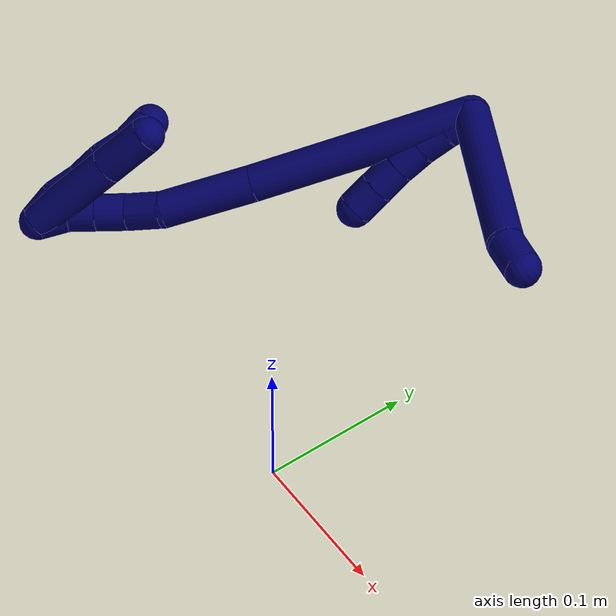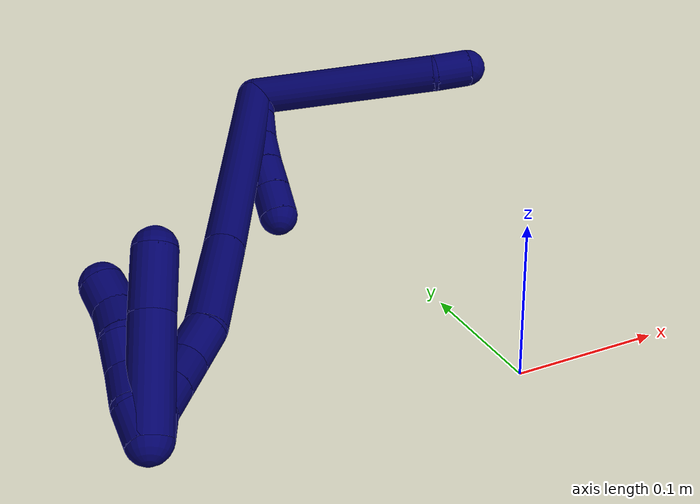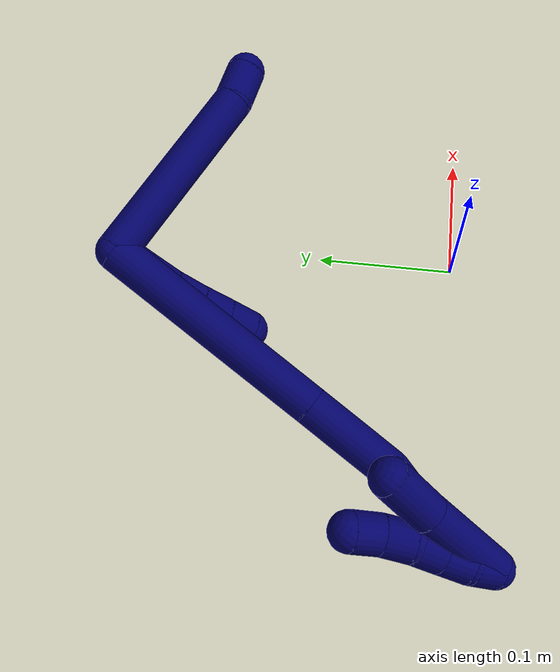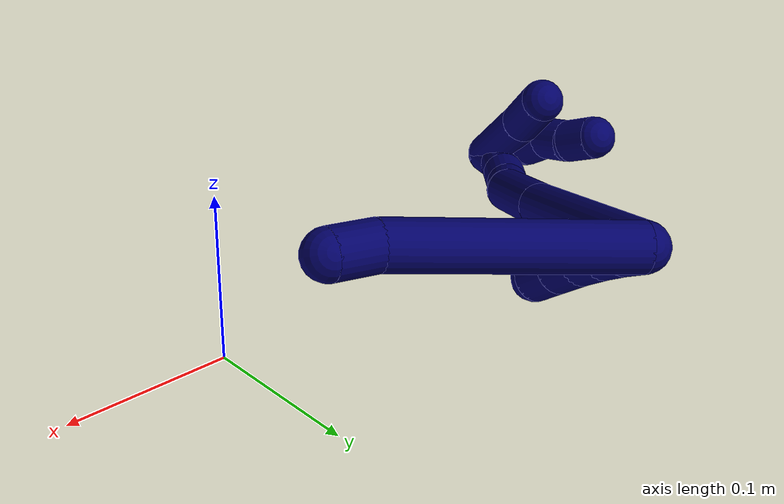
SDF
<sdf version="1.7">
 <world name="default">
  <model name="7">
   <static>0</static>
   <link name="7">
    <collision name="collision-cylinder-e_1_2_8">
     <pose>0.061822 0.010924 -0.002964 -1.83573 1.38971 -1.6567</pose>
     <geometry><cylinder><radius>0.0125</radius><length>0.125699</length></cylinder></geometry>
     <surface>
      <friction><ode><mu>1.16</mu><mu2>1.16</mu2><slip1>0</slip1><slip2>0</slip2></ode></friction>
      <contact><ode><kp>1e+06</kp><kd>1</kd><max_vel>0</max_vel><min_depth>0.001</min_depth></ode></contact>
     </surface>
    </collision>
    <visual name="visual-cylinder-e_1_2_8">
     <pose>0.061822 0.010924 -0.002964 -1.83573 1.38971 -1.6567</pose>
     <geometry><cylinder><radius>0.0125</radius><length>0.125699</length></cylinder></geometry>
     <material><ambient>0.003922 0 0.403922 1</ambient></material>
    </visual>
    <collision name="collision-cylinder-e_2_8_6">
     <pose>0.134862 0.026102 -0.00401 -1.14716 1.17662 -0.813837</pose>
     <geometry><cylinder><radius>0.0125</radius><length>0.024301</length></cylinder></geometry>
     <surface>
      <friction><ode><mu>1.16</mu><mu2>1.16</mu2><slip1>0</slip1><slip2>0</slip2></ode></friction>
      <contact><ode><kp>1e+06</kp><kd>1</kd><max_vel>0</max_vel><min_depth>0.001</min_depth></ode></contact>
     </surface>
    </collision>
    <visual name="visual-cylinder-e_2_8_6">
     <pose>0.134862 0.026102 -0.00401 -1.14716 1.17662 -0.813837</pose>
     <geometry><cylinder><radius>0.0125</radius><length>0.024301</length></cylinder></geometry>
     <material><ambient>0.003922 0 0.403922 1</ambient></material>
    </visual>
    <collision name="collision-cylinder-e_1_2_9">
     <pose>3e-05 3.8e-05 -0.01 -3.13782 0.002966 -1.33151</pose>
     <geometry><cylinder><radius>0.0125</radius><length>0.02</length></cylinder></geometry>
     <surface>
      <friction><ode><mu>1.16</mu><mu2>1.16</mu2><slip1>0</slip1><slip2>0</slip2></ode></friction>
      <contact><ode><kp>1e+06</kp><kd>1</kd><max_vel>0</max_vel><min_depth>0.001</min_depth></ode></contact>
     </surface>
    </collision>
    <visual name="visual-cylinder-e_1_2_9">
     <pose>3e-05 3.8e-05 -0.01 -3.13782 0.002966 -1.33151</pose>
     <geometry><cylinder><radius>0.0125</radius><length>0.02</length></cylinder></geometry>
     <material><ambient>0.003922 0 0.403922 1</ambient></material>
    </visual>
    <collision name="collision-cylinder-e_2_9_10">
     <pose>0.000271 0.000533 -0.029987 -3.09583 0.021176 -0.866639</pose>
     <geometry><cylinder><radius>0.0125</radius><length>0.02</length></cylinder></geometry>
     <surface>
      <friction><ode><mu>1.16</mu><mu2>1.16</mu2><slip1>0</slip1><slip2>0</slip2></ode></friction>
      <contact><ode><kp>1e+06</kp><kd>1</kd><max_vel>0</max_vel><min_depth>0.001</min_depth></ode></contact>
     </surface>
    </collision>
    <visual name="visual-cylinder-e_2_9_10">
     <pose>0.000271 0.000533 -0.029987 -3.09583 0.021176 -0.866639</pose>
     <geometry><cylinder><radius>0.0125</radius><length>0.02</length></cylinder></geometry>
     <material><ambient>0.003922 0 0.403922 1</ambient></material>
    </visual>
    <collision name="collision-cylinder-e_3_10_11">
     <pose>0.001538 0.002104 -0.049856 -3.0294 0.105699 -1.51111</pose>
     <geometry><cylinder><radius>0.0125</radius><length>0.02</length></cylinder></geometry>
     <surface>
      <friction><ode><mu>1.16</mu><mu2>1.16</mu2><slip1>0</slip1><slip2>0</slip2></ode></friction>
      <contact><ode><kp>1e+06</kp><kd>1</kd><max_vel>0</max_vel><min_depth>0.001</min_depth></ode></contact>
     </surface>
    </collision>
    <visual name="visual-cylinder-e_3_10_11">
     <pose>0.001538 0.002104 -0.049856 -3.0294 0.105699 -1.51111</pose>
     <geometry><cylinder><radius>0.0125</radius><length>0.02</length></cylinder></geometry>
     <material><ambient>0.003922 0 0.403922 1</ambient></material>
    </visual>
    <collision name="collision-cylinder-e_4_11_12">
     <pose>0.004073 0.005049 -0.069456 -2.95531 0.148585 -1.34556</pose>
     <geometry><cylinder><radius>0.0125</radius><length>0.02</length></cylinder></geometry>
     <surface>
      <friction><ode><mu>1.16</mu><mu2>1.16</mu2><slip1>0</slip1><slip2>0</slip2></ode></friction>
      <contact><ode><kp>1e+06</kp><kd>1</kd><max_vel>0</max_vel><min_depth>0.001</min_depth></ode></contact>
     </surface>
    </collision>
    <visual name="visual-cylinder-e_4_11_12">
     <pose>0.004073 0.005049 -0.069456 -2.95531 0.148585 -1.34556</pose>
     <geometry><cylinder><radius>0.0125</radius><length>0.02</length></cylinder></geometry>
     <material><ambient>0.003922 0 0.403922 1</ambient></material>
    </visual>
    <collision name="collision-cylinder-e_5_12_5">
     <pose>0.006913 0.008707 -0.088913 -2.95616 0.136312 -1.26653</pose>
     <geometry><cylinder><radius>0.0125</radius><length>0.02</length></cylinder></geometry>
     <surface>
      <friction><ode><mu>1.16</mu><mu2>1.16</mu2><slip1>0</slip1><slip2>0</slip2></ode></friction>
      <contact><ode><kp>1e+06</kp><kd>1</kd><max_vel>0</max_vel><min_depth>0.001</min_depth></ode></contact>
     </surface>
    </collision>
    <visual name="visual-cylinder-e_5_12_5">
     <pose>0.006913 0.008707 -0.088913 -2.95616 0.136312 -1.26653</pose>
     <geometry><cylinder><radius>0.0125</radius><length>0.02</length></cylinder></geometry>
     <material><ambient>0.003922 0 0.403922 1</ambient></material>
    </visual>
    <collision name="collision-cylinder-e_1_2_13">
     <pose>-0.004886 -0.017905 -0.073311 2.90205 -0.064659 -0.525065</pose>
     <geometry><cylinder><radius>0.0125</radius><length>0.151248</length></cylinder></geometry>
     <surface>
      <friction><ode><mu>1.16</mu><mu2>1.16</mu2><slip1>0</slip1><slip2>0</slip2></ode></friction>
      <contact><ode><kp>1e+06</kp><kd>1</kd><max_vel>0</max_vel><min_depth>0.001</min_depth></ode></contact>
     </surface>
    </collision>
    <visual name="visual-cylinder-e_1_2_13">
     <pose>-0.004886 -0.017905 -0.073311 2.90205 -0.064659 -0.525065</pose>
     <geometry><cylinder><radius>0.0125</radius><length>0.151248</length></cylinder></geometry>
     <material><ambient>0.003922 0 0.403922 1</ambient></material>
    </visual>
    <collision name="collision-cylinder-e_2_13_14">
     <pose>-0.011977 -0.043979 -0.177117 2.87981 -0.069713 -0.517887</pose>
     <geometry><cylinder><radius>0.0125</radius><length>0.063292</length></cylinder></geometry>
     <surface>
      <friction><ode><mu>1.16</mu><mu2>1.16</mu2><slip1>0</slip1><slip2>0</slip2></ode></friction>
      <contact><ode><kp>1e+06</kp><kd>1</kd><max_vel>0</max_vel><min_depth>0.001</min_depth></ode></contact>
     </surface>
    </collision>
    <visual name="visual-cylinder-e_2_13_14">
     <pose>-0.011977 -0.043979 -0.177117 2.87981 -0.069713 -0.517887</pose>
     <geometry><cylinder><radius>0.0125</radius><length>0.063292</length></cylinder></geometry>
     <material><ambient>0.003922 0 0.403922 1</ambient></material>
    </visual>
    <collision name="collision-cylinder-e_3_14_15">
     <pose>-0.01815 -0.056082 -0.218443 2.79334 -0.331662 -1.52106</pose>
     <geometry><cylinder><radius>0.0125</radius><length>0.024376</length></cylinder></geometry>
     <surface>
      <friction><ode><mu>1.16</mu><mu2>1.16</mu2><slip1>0</slip1><slip2>0</slip2></ode></friction>
      <contact><ode><kp>1e+06</kp><kd>1</kd><max_vel>0</max_vel><min_depth>0.001</min_depth></ode></contact>
     </surface>
    </collision>
    <visual name="visual-cylinder-e_3_14_15">
     <pose>-0.01815 -0.056082 -0.218443 2.79334 -0.331662 -1.52106</pose>
     <geometry><cylinder><radius>0.0125</radius><length>0.024376</length></cylinder></geometry>
     <material><ambient>0.003922 0 0.403922 1</ambient></material>
    </visual>
    <collision name="collision-cylinder-e_4_15_16">
     <pose>-0.024024 -0.06499 -0.238347 2.64002 -0.182091 -0.684701</pose>
     <geometry><cylinder><radius>0.0125</radius><length>0.021042</length></cylinder></geometry>
     <surface>
      <friction><ode><mu>1.16</mu><mu2>1.16</mu2><slip1>0</slip1><slip2>0</slip2></ode></friction>
      <contact><ode><kp>1e+06</kp><kd>1</kd><max_vel>0</max_vel><min_depth>0.001</min_depth></ode></contact>
     </surface>
    </collision>
    <visual name="visual-cylinder-e_4_15_16">
     <pose>-0.024024 -0.06499 -0.238347 2.64002 -0.182091 -0.684701</pose>
     <geometry><cylinder><radius>0.0125</radius><length>0.021042</length></cylinder></geometry>
     <material><ambient>0.003922 0 0.403922 1</ambient></material>
    </visual>
    <collision name="collision-cylinder-e_5_16_17">
     <pose>-0.027742 -0.074682 -0.25605 2.64137 -0.182273 -0.687114</pose>
     <geometry><cylinder><radius>0.0125</radius><length>0.020002</length></cylinder></geometry>
     <surface>
      <friction><ode><mu>1.16</mu><mu2>1.16</mu2><slip1>0</slip1><slip2>0</slip2></ode></friction>
      <contact><ode><kp>1e+06</kp><kd>1</kd><max_vel>0</max_vel><min_depth>0.001</min_depth></ode></contact>
     </surface>
    </collision>
    <visual name="visual-cylinder-e_5_16_17">
     <pose>-0.027742 -0.074682 -0.25605 2.64137 -0.182273 -0.687114</pose>
     <geometry><cylinder><radius>0.0125</radius><length>0.020002</length></cylinder></geometry>
     <material><ambient>0.003922 0 0.403922 1</ambient></material>
    </visual>
    <collision name="collision-cylinder-e_6_17_1">
     <pose>-0.028399 -0.083267 -0.273851 2.74247 0.115645 0.557512</pose>
     <geometry><cylinder><radius>0.0125</radius><length>0.020039</length></cylinder></geometry>
     <surface>
      <friction><ode><mu>1.16</mu><mu2>1.16</mu2><slip1>0</slip1><slip2>0</slip2></ode></friction>
      <contact><ode><kp>1e+06</kp><kd>1</kd><max_vel>0</max_vel><min_depth>0.001</min_depth></ode></contact>
     </surface>
    </collision>
    <visual name="visual-cylinder-e_6_17_1">
     <pose>-0.028399 -0.083267 -0.273851 2.74247 0.115645 0.557512</pose>
     <geometry><cylinder><radius>0.0125</radius><length>0.020039</length></cylinder></geometry>
     <material><ambient>0.003922 0 0.403922 1</ambient></material>
    </visual>
    <collision name="collision-cylinder-e_1_1_18">
     <pose>-0.02474 -0.092178 -0.251682 0.15958 0.078689 0.006295</pose>
     <geometry><cylinder><radius>0.0125</radius><length>0.063682</length></cylinder></geometry>
     <surface>
      <friction><ode><mu>1.16</mu><mu2>1.16</mu2><slip1>0</slip1><slip2>0</slip2></ode></friction>
      <contact><ode><kp>1e+06</kp><kd>1</kd><max_vel>0</max_vel><min_depth>0.001</min_depth></ode></contact>
     </surface>
    </collision>
    <visual name="visual-cylinder-e_1_1_18">
     <pose>-0.02474 -0.092178 -0.251682 0.15958 0.078689 0.006295</pose>
     <geometry><cylinder><radius>0.0125</radius><length>0.063682</length></cylinder></geometry>
     <material><ambient>0.003922 0 0.403922 1</ambient></material>
    </visual>
    <collision name="collision-cylinder-e_2_18_4">
     <pose>-0.020196 -0.100392 -0.202579 0.176554 0.112643 0.00998</pose>
     <geometry><cylinder><radius>0.0125</radius><length>0.036318</length></cylinder></geometry>
     <surface>
      <friction><ode><mu>1.16</mu><mu2>1.16</mu2><slip1>0</slip1><slip2>0</slip2></ode></friction>
      <contact><ode><kp>1e+06</kp><kd>1</kd><max_vel>0</max_vel><min_depth>0.001</min_depth></ode></contact>
     </surface>
    </collision>
    <visual name="visual-cylinder-e_2_18_4">
     <pose>-0.020196 -0.100392 -0.202579 0.176554 0.112643 0.00998</pose>
     <geometry><cylinder><radius>0.0125</radius><length>0.036318</length></cylinder></geometry>
     <material><ambient>0.003922 0 0.403922 1</ambient></material>
    </visual>
    <collision name="collision-cylinder-e_1_1_19">
     <pose>-0.030261 -0.08902 -0.273676 0.199093 -0.306635 -0.030865</pose>
     <geometry><cylinder><radius>0.0125</radius><length>0.02</length></cylinder></geometry>
     <surface>
      <friction><ode><mu>1.16</mu><mu2>1.16</mu2><slip1>0</slip1><slip2>0</slip2></ode></friction>
      <contact><ode><kp>1e+06</kp><kd>1</kd><max_vel>0</max_vel><min_depth>0.001</min_depth></ode></contact>
     </surface>
    </collision>
    <visual name="visual-cylinder-e_1_1_19">
     <pose>-0.030261 -0.08902 -0.273676 0.199093 -0.306635 -0.030865</pose>
     <geometry><cylinder><radius>0.0125</radius><length>0.02</length></cylinder></geometry>
     <material><ambient>0.003922 0 0.403922 1</ambient></material>
    </visual>
    <collision name="collision-cylinder-e_2_19_20">
     <pose>-0.035515 -0.090219 -0.254608 -0.070469 -0.225446 0.007981</pose>
     <geometry><cylinder><radius>0.0125</radius><length>0.02</length></cylinder></geometry>
     <surface>
      <friction><ode><mu>1.16</mu><mu2>1.16</mu2><slip1>0</slip1><slip2>0</slip2></ode></friction>
      <contact><ode><kp>1e+06</kp><kd>1</kd><max_vel>0</max_vel><min_depth>0.001</min_depth></ode></contact>
     </surface>
    </collision>
    <visual name="visual-cylinder-e_2_19_20">
     <pose>-0.035515 -0.090219 -0.254608 -0.070469 -0.225446 0.007981</pose>
     <geometry><cylinder><radius>0.0125</radius><length>0.02</length></cylinder></geometry>
     <material><ambient>0.003922 0 0.403922 1</ambient></material>
    </visual>
    <collision name="collision-cylinder-e_3_20_21">
     <pose>-0.039542 -0.090784 -0.235127 0.12748 -0.180074 -0.011524</pose>
     <geometry><cylinder><radius>0.0125</radius><length>0.02</length></cylinder></geometry>
     <surface>
      <friction><ode><mu>1.16</mu><mu2>1.16</mu2><slip1>0</slip1><slip2>0</slip2></ode></friction>
      <contact><ode><kp>1e+06</kp><kd>1</kd><max_vel>0</max_vel><min_depth>0.001</min_depth></ode></contact>
     </surface>
    </collision>
    <visual name="visual-cylinder-e_3_20_21">
     <pose>-0.039542 -0.090784 -0.235127 0.12748 -0.180074 -0.011524</pose>
     <geometry><cylinder><radius>0.0125</radius><length>0.02</length></cylinder></geometry>
     <material><ambient>0.003922 0 0.403922 1</ambient></material>
    </visual>
    <collision name="collision-cylinder-e_4_21_22">
     <pose>-0.044594 -0.090438 -0.216051 -0.169691 -0.332223 0.028516</pose>
     <geometry><cylinder><radius>0.0125</radius><length>0.02</length></cylinder></geometry>
     <surface>
      <friction><ode><mu>1.16</mu><mu2>1.16</mu2><slip1>0</slip1><slip2>0</slip2></ode></friction>
      <contact><ode><kp>1e+06</kp><kd>1</kd><max_vel>0</max_vel><min_depth>0.001</min_depth></ode></contact>
     </surface>
    </collision>
    <visual name="visual-cylinder-e_4_21_22">
     <pose>-0.044594 -0.090438 -0.216051 -0.169691 -0.332223 0.028516</pose>
     <geometry><cylinder><radius>0.0125</radius><length>0.02</length></cylinder></geometry>
     <material><ambient>0.003922 0 0.403922 1</ambient></material>
    </visual>
    <collision name="collision-cylinder-e_5_22_3">
     <pose>-0.051955 -0.089518 -0.197637 0.074252 -0.422371 -0.015925</pose>
     <geometry><cylinder><radius>0.0125</radius><length>0.02</length></cylinder></geometry>
     <surface>
      <friction><ode><mu>1.16</mu><mu2>1.16</mu2><slip1>0</slip1><slip2>0</slip2></ode></friction>
      <contact><ode><kp>1e+06</kp><kd>1</kd><max_vel>0</max_vel><min_depth>0.001</min_depth></ode></contact>
     </surface>
    </collision>
    <visual name="visual-cylinder-e_5_22_3">
     <pose>-0.051955 -0.089518 -0.197637 0.074252 -0.422371 -0.015925</pose>
     <geometry><cylinder><radius>0.0125</radius><length>0.02</length></cylinder></geometry>
     <material><ambient>0.003922 0 0.403922 1</ambient></material>
    </visual>
    <collision name="collision-sphere-3">
     <pose>-0.056054 -0.090195 -0.188541 0 -0 0</pose>
     <geometry><sphere><radius>0.0125</radius></sphere></geometry>
     <surface>
      <friction><ode><mu>1.16</mu><mu2>1.16</mu2><slip1>0</slip1><slip2>0</slip2></ode></friction>
      <contact><ode><kp>1e+06</kp><kd>1</kd><max_vel>0</max_vel><min_depth>0.001</min_depth></ode></contact>
     </surface>
    </collision>
    <visual name="visual-sphere-3">
     <pose>-0.056054 -0.090195 -0.188541 0 -0 0</pose>
     <geometry><sphere><radius>0.0125</radius></sphere></geometry>
     <material><ambient>0.003922 0 0.403922 1</ambient></material>
    </visual>
    <collision name="collision-sphere-22">
     <pose>-0.047856 -0.088842 -0.206733 0 -0 0</pose>
     <geometry><sphere><radius>0.0125</radius></sphere></geometry>
     <surface>
      <friction><ode><mu>1.16</mu><mu2>1.16</mu2><slip1>0</slip1><slip2>0</slip2></ode></friction>
      <contact><ode><kp>1e+06</kp><kd>1</kd><max_vel>0</max_vel><min_depth>0.001</min_depth></ode></contact>
     </surface>
    </collision>
    <visual name="visual-sphere-22">
     <pose>-0.047856 -0.088842 -0.206733 0 -0 0</pose>
     <geometry><sphere><radius>0.0125</radius></sphere></geometry>
     <material><ambient>0.003922 0 0.403922 1</ambient></material>
    </visual>
    <collision name="collision-sphere-21">
     <pose>-0.041333 -0.092034 -0.225368 0 -0 0</pose>
     <geometry><sphere><radius>0.0125</radius></sphere></geometry>
     <surface>
      <friction><ode><mu>1.16</mu><mu2>1.16</mu2><slip1>0</slip1><slip2>0</slip2></ode></friction>
      <contact><ode><kp>1e+06</kp><kd>1</kd><max_vel>0</max_vel><min_depth>0.001</min_depth></ode></contact>
     </surface>
    </collision>
    <visual name="visual-sphere-21">
     <pose>-0.041333 -0.092034 -0.225368 0 -0 0</pose>
     <geometry><sphere><radius>0.0125</radius></sphere></geometry>
     <material><ambient>0.003922 0 0.403922 1</ambient></material>
    </visual>
    <collision name="collision-sphere-20">
     <pose>-0.037751 -0.089533 -0.244885 0 -0 0</pose>
     <geometry><sphere><radius>0.0125</radius></sphere></geometry>
     <surface>
      <friction><ode><mu>1.16</mu><mu2>1.16</mu2><slip1>0</slip1><slip2>0</slip2></ode></friction>
      <contact><ode><kp>1e+06</kp><kd>1</kd><max_vel>0</max_vel><min_depth>0.001</min_depth></ode></contact>
     </surface>
    </collision>
    <visual name="visual-sphere-20">
     <pose>-0.037751 -0.089533 -0.244885 0 -0 0</pose>
     <geometry><sphere><radius>0.0125</radius></sphere></geometry>
     <material><ambient>0.003922 0 0.403922 1</ambient></material>
    </visual>
    <collision name="collision-sphere-19">
     <pose>-0.03328 -0.090905 -0.264331 0 -0 0</pose>
     <geometry><sphere><radius>0.0125</radius></sphere></geometry>
     <surface>
      <friction><ode><mu>1.16</mu><mu2>1.16</mu2><slip1>0</slip1><slip2>0</slip2></ode></friction>
      <contact><ode><kp>1e+06</kp><kd>1</kd><max_vel>0</max_vel><min_depth>0.001</min_depth></ode></contact>
     </surface>
    </collision>
    <visual name="visual-sphere-19">
     <pose>-0.03328 -0.090905 -0.264331 0 -0 0</pose>
     <geometry><sphere><radius>0.0125</radius></sphere></geometry>
     <material><ambient>0.003922 0 0.403922 1</ambient></material>
    </visual>
    <collision name="collision-sphere-11">
     <pose>0.002593 0.003217 -0.059738 0 -0 0</pose>
     <geometry><sphere><radius>0.0125</radius></sphere></geometry>
     <surface>
      <friction><ode><mu>1.16</mu><mu2>1.16</mu2><slip1>0</slip1><slip2>0</slip2></ode></friction>
      <contact><ode><kp>1e+06</kp><kd>1</kd><max_vel>0</max_vel><min_depth>0.001</min_depth></ode></contact>
     </surface>
    </collision>
    <visual name="visual-sphere-11">
     <pose>0.002593 0.003217 -0.059738 0 -0 0</pose>
     <geometry><sphere><radius>0.0125</radius></sphere></geometry>
     <material><ambient>0.003922 0 0.403922 1</ambient></material>
    </visual>
    <collision name="collision-sphere-10">
     <pose>0.000483 0.00099 -0.039974 0 -0 0</pose>
     <geometry><sphere><radius>0.0125</radius></sphere></geometry>
     <surface>
      <friction><ode><mu>1.16</mu><mu2>1.16</mu2><slip1>0</slip1><slip2>0</slip2></ode></friction>
      <contact><ode><kp>1e+06</kp><kd>1</kd><max_vel>0</max_vel><min_depth>0.001</min_depth></ode></contact>
     </surface>
    </collision>
    <visual name="visual-sphere-10">
     <pose>0.000483 0.00099 -0.039974 0 -0 0</pose>
     <geometry><sphere><radius>0.0125</radius></sphere></geometry>
     <material><ambient>0.003922 0 0.403922 1</ambient></material>
    </visual>
    <collision name="collision-sphere-6">
     <pose>0.146081 0.030356 -0.002091 0 -0 0</pose>
     <geometry><sphere><radius>0.0125</radius></sphere></geometry>
     <surface>
      <friction><ode><mu>1.16</mu><mu2>1.16</mu2><slip1>0</slip1><slip2>0</slip2></ode></friction>
      <contact><ode><kp>1e+06</kp><kd>1</kd><max_vel>0</max_vel><min_depth>0.001</min_depth></ode></contact>
     </surface>
    </collision>
    <visual name="visual-sphere-6">
     <pose>0.146081 0.030356 -0.002091 0 -0 0</pose>
     <geometry><sphere><radius>0.0125</radius></sphere></geometry>
     <material><ambient>0.003922 0 0.403922 1</ambient></material>
    </visual>
    <collision name="collision-sphere-9">
     <pose>5.9e-05 7.6e-05 -0.02 0 -0 0</pose>
     <geometry><sphere><radius>0.0125</radius></sphere></geometry>
     <surface>
      <friction><ode><mu>1.16</mu><mu2>1.16</mu2><slip1>0</slip1><slip2>0</slip2></ode></friction>
      <contact><ode><kp>1e+06</kp><kd>1</kd><max_vel>0</max_vel><min_depth>0.001</min_depth></ode></contact>
     </surface>
    </collision>
    <visual name="visual-sphere-9">
     <pose>5.9e-05 7.6e-05 -0.02 0 -0 0</pose>
     <geometry><sphere><radius>0.0125</radius></sphere></geometry>
     <material><ambient>0.003922 0 0.403922 1</ambient></material>
    </visual>
    <collision name="collision-sphere-2">
     <geometry><sphere><radius>0.0125</radius></sphere></geometry>
     <surface>
      <friction><ode><mu>1.16</mu><mu2>1.16</mu2><slip1>0</slip1><slip2>0</slip2></ode></friction>
      <contact><ode><kp>1e+06</kp><kd>1</kd><max_vel>0</max_vel><min_depth>0.001</min_depth></ode></contact>
     </surface>
    </collision>
    <visual name="visual-sphere-2">
     <geometry><sphere><radius>0.0125</radius></sphere></geometry>
     <material><ambient>0.003922 0 0.403922 1</ambient></material>
    </visual>
    <collision name="collision-sphere-8">
     <pose>0.123644 0.021848 -0.005928 0 -0 0</pose>
     <geometry><sphere><radius>0.0125</radius></sphere></geometry>
     <surface>
      <friction><ode><mu>1.16</mu><mu2>1.16</mu2><slip1>0</slip1><slip2>0</slip2></ode></friction>
      <contact><ode><kp>1e+06</kp><kd>1</kd><max_vel>0</max_vel><min_depth>0.001</min_depth></ode></contact>
     </surface>
    </collision>
    <visual name="visual-sphere-8">
     <pose>0.123644 0.021848 -0.005928 0 -0 0</pose>
     <geometry><sphere><radius>0.0125</radius></sphere></geometry>
     <material><ambient>0.003922 0 0.403922 1</ambient></material>
    </visual>
    <collision name="collision-sphere-12">
     <pose>0.005554 0.00688 -0.079175 0 -0 0</pose>
     <geometry><sphere><radius>0.0125</radius></sphere></geometry>
     <surface>
      <friction><ode><mu>1.16</mu><mu2>1.16</mu2><slip1>0</slip1><slip2>0</slip2></ode></friction>
      <contact><ode><kp>1e+06</kp><kd>1</kd><max_vel>0</max_vel><min_depth>0.001</min_depth></ode></contact>
     </surface>
    </collision>
    <visual name="visual-sphere-12">
     <pose>0.005554 0.00688 -0.079175 0 -0 0</pose>
     <geometry><sphere><radius>0.0125</radius></sphere></geometry>
     <material><ambient>0.003922 0 0.403922 1</ambient></material>
    </visual>
    <collision name="collision-sphere-5">
     <pose>0.008271 0.010533 -0.09865 0 -0 0</pose>
     <geometry><sphere><radius>0.0125</radius></sphere></geometry>
     <surface>
      <friction><ode><mu>1.16</mu><mu2>1.16</mu2><slip1>0</slip1><slip2>0</slip2></ode></friction>
      <contact><ode><kp>1e+06</kp><kd>1</kd><max_vel>0</max_vel><min_depth>0.001</min_depth></ode></contact>
     </surface>
    </collision>
    <visual name="visual-sphere-5">
     <pose>0.008271 0.010533 -0.09865 0 -0 0</pose>
     <geometry><sphere><radius>0.0125</radius></sphere></geometry>
     <material><ambient>0.003922 0 0.403922 1</ambient></material>
    </visual>
    <collision name="collision-sphere-13">
     <pose>-0.009773 -0.035809 -0.146623 0 -0 0</pose>
     <geometry><sphere><radius>0.0125</radius></sphere></geometry>
     <surface>
      <friction><ode><mu>1.16</mu><mu2>1.16</mu2><slip1>0</slip1><slip2>0</slip2></ode></friction>
      <contact><ode><kp>1e+06</kp><kd>1</kd><max_vel>0</max_vel><min_depth>0.001</min_depth></ode></contact>
     </surface>
    </collision>
    <visual name="visual-sphere-13">
     <pose>-0.009773 -0.035809 -0.146623 0 -0 0</pose>
     <geometry><sphere><radius>0.0125</radius></sphere></geometry>
     <material><ambient>0.003922 0 0.403922 1</ambient></material>
    </visual>
    <collision name="collision-sphere-14">
     <pose>-0.014182 -0.05215 -0.207611 0 -0 0</pose>
     <geometry><sphere><radius>0.0125</radius></sphere></geometry>
     <surface>
      <friction><ode><mu>1.16</mu><mu2>1.16</mu2><slip1>0</slip1><slip2>0</slip2></ode></friction>
      <contact><ode><kp>1e+06</kp><kd>1</kd><max_vel>0</max_vel><min_depth>0.001</min_depth></ode></contact>
     </surface>
    </collision>
    <visual name="visual-sphere-14">
     <pose>-0.014182 -0.05215 -0.207611 0 -0 0</pose>
     <geometry><sphere><radius>0.0125</radius></sphere></geometry>
     <material><ambient>0.003922 0 0.403922 1</ambient></material>
    </visual>
    <collision name="collision-sphere-15">
     <pose>-0.022119 -0.060015 -0.229275 0 -0 0</pose>
     <geometry><sphere><radius>0.0125</radius></sphere></geometry>
     <surface>
      <friction><ode><mu>1.16</mu><mu2>1.16</mu2><slip1>0</slip1><slip2>0</slip2></ode></friction>
      <contact><ode><kp>1e+06</kp><kd>1</kd><max_vel>0</max_vel><min_depth>0.001</min_depth></ode></contact>
     </surface>
    </collision>
    <visual name="visual-sphere-15">
     <pose>-0.022119 -0.060015 -0.229275 0 -0 0</pose>
     <geometry><sphere><radius>0.0125</radius></sphere></geometry>
     <material><ambient>0.003922 0 0.403922 1</ambient></material>
    </visual>
    <collision name="collision-sphere-16">
     <pose>-0.025929 -0.069965 -0.24742 0 -0 0</pose>
     <geometry><sphere><radius>0.0125</radius></sphere></geometry>
     <surface>
      <friction><ode><mu>1.16</mu><mu2>1.16</mu2><slip1>0</slip1><slip2>0</slip2></ode></friction>
      <contact><ode><kp>1e+06</kp><kd>1</kd><max_vel>0</max_vel><min_depth>0.001</min_depth></ode></contact>
     </surface>
    </collision>
    <visual name="visual-sphere-16">
     <pose>-0.025929 -0.069965 -0.24742 0 -0 0</pose>
     <geometry><sphere><radius>0.0125</radius></sphere></geometry>
     <material><ambient>0.003922 0 0.403922 1</ambient></material>
    </visual>
    <collision name="collision-sphere-17">
     <pose>-0.029555 -0.079399 -0.264681 0 -0 0</pose>
     <geometry><sphere><radius>0.0125</radius></sphere></geometry>
     <surface>
      <friction><ode><mu>1.16</mu><mu2>1.16</mu2><slip1>0</slip1><slip2>0</slip2></ode></friction>
      <contact><ode><kp>1e+06</kp><kd>1</kd><max_vel>0</max_vel><min_depth>0.001</min_depth></ode></contact>
     </surface>
    </collision>
    <visual name="visual-sphere-17">
     <pose>-0.029555 -0.079399 -0.264681 0 -0 0</pose>
     <geometry><sphere><radius>0.0125</radius></sphere></geometry>
     <material><ambient>0.003922 0 0.403922 1</ambient></material>
    </visual>
    <collision name="collision-sphere-1">
     <pose>-0.027243 -0.087134 -0.283021 0 -0 0</pose>
     <geometry><sphere><radius>0.0125</radius></sphere></geometry>
     <surface>
      <friction><ode><mu>1.16</mu><mu2>1.16</mu2><slip1>0</slip1><slip2>0</slip2></ode></friction>
      <contact><ode><kp>1e+06</kp><kd>1</kd><max_vel>0</max_vel><min_depth>0.001</min_depth></ode></contact>
     </surface>
    </collision>
    <visual name="visual-sphere-1">
     <pose>-0.027243 -0.087134 -0.283021 0 -0 0</pose>
     <geometry><sphere><radius>0.0125</radius></sphere></geometry>
     <material><ambient>0.003922 0 0.403922 1</ambient></material>
    </visual>
    <collision name="collision-sphere-18">
     <pose>-0.022237 -0.097222 -0.220342 0 -0 0</pose>
     <geometry><sphere><radius>0.0125</radius></sphere></geometry>
     <surface>
      <friction><ode><mu>1.16</mu><mu2>1.16</mu2><slip1>0</slip1><slip2>0</slip2></ode></friction>
      <contact><ode><kp>1e+06</kp><kd>1</kd><max_vel>0</max_vel><min_depth>0.001</min_depth></ode></contact>
     </surface>
    </collision>
    <visual name="visual-sphere-18">
     <pose>-0.022237 -0.097222 -0.220342 0 -0 0</pose>
     <geometry><sphere><radius>0.0125</radius></sphere></geometry>
     <material><ambient>0.003922 0 0.403922 1</ambient></material>
    </visual>
    <collision name="collision-sphere-4">
     <pose>-0.018155 -0.103561 -0.184816 0 -0 0</pose>
     <geometry><sphere><radius>0.0125</radius></sphere></geometry>
     <surface>
      <friction><ode><mu>1.16</mu><mu2>1.16</mu2><slip1>0</slip1><slip2>0</slip2></ode></friction>
      <contact><ode><kp>1e+06</kp><kd>1</kd><max_vel>0</max_vel><min_depth>0.001</min_depth></ode></contact>
     </surface>
    </collision>
    <visual name="visual-sphere-4">
     <pose>-0.018155 -0.103561 -0.184816 0 -0 0</pose>
     <geometry><sphere><radius>0.0125</radius></sphere></geometry>
     <material><ambient>0.003922 0 0.403922 1</ambient></material>
    </visual>
    <inertial>
     <pose>0.001852 -0.036758 -0.127478 0 -0 0</pose>
     <mass>0.75</mass>
     <inertia>
      <ixx>0.000123</ixx>
      <ixy>0</ixy>
      <ixz>0</ixz>
      <iyy>-0.000271</iyy>
      <iyz>0</iyz>
      <izz>-0.000112</izz>
     </inertia>
    </inertial>
   </link>
   <pose>-0.084891 0.218425 0.127542 -1.01122 -0.309155 -0.527367</pose>
  </model>
 </world>
</sdf>
